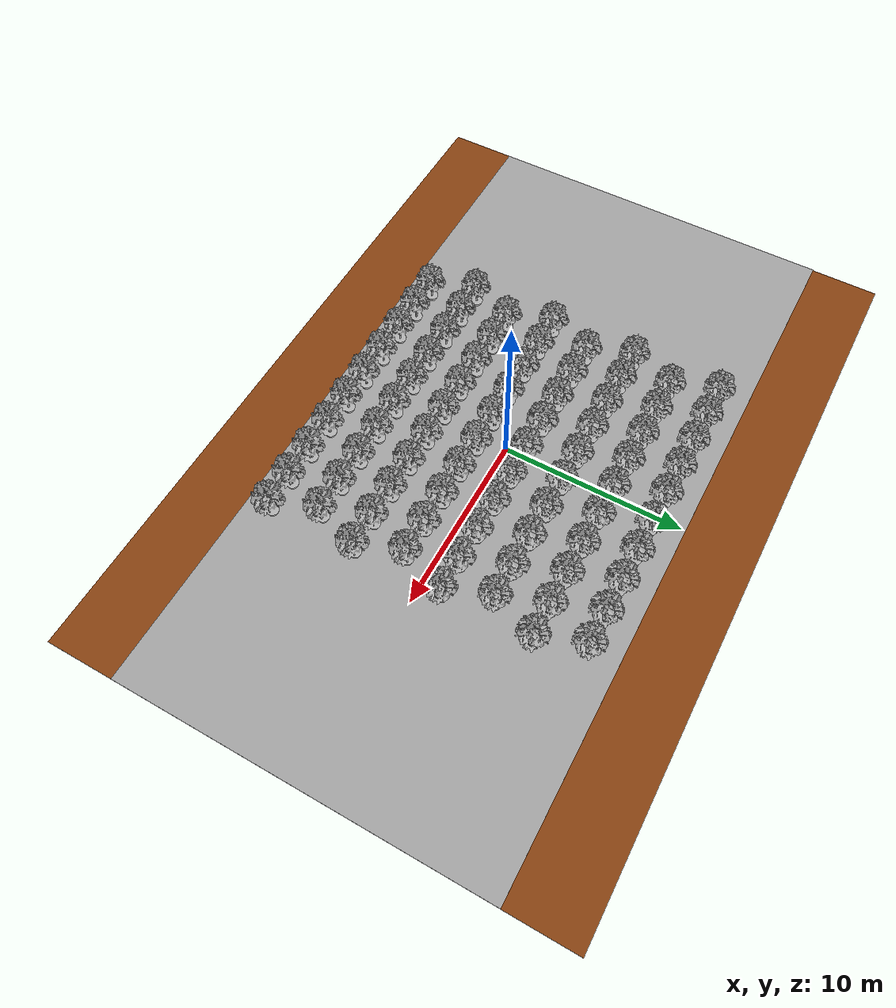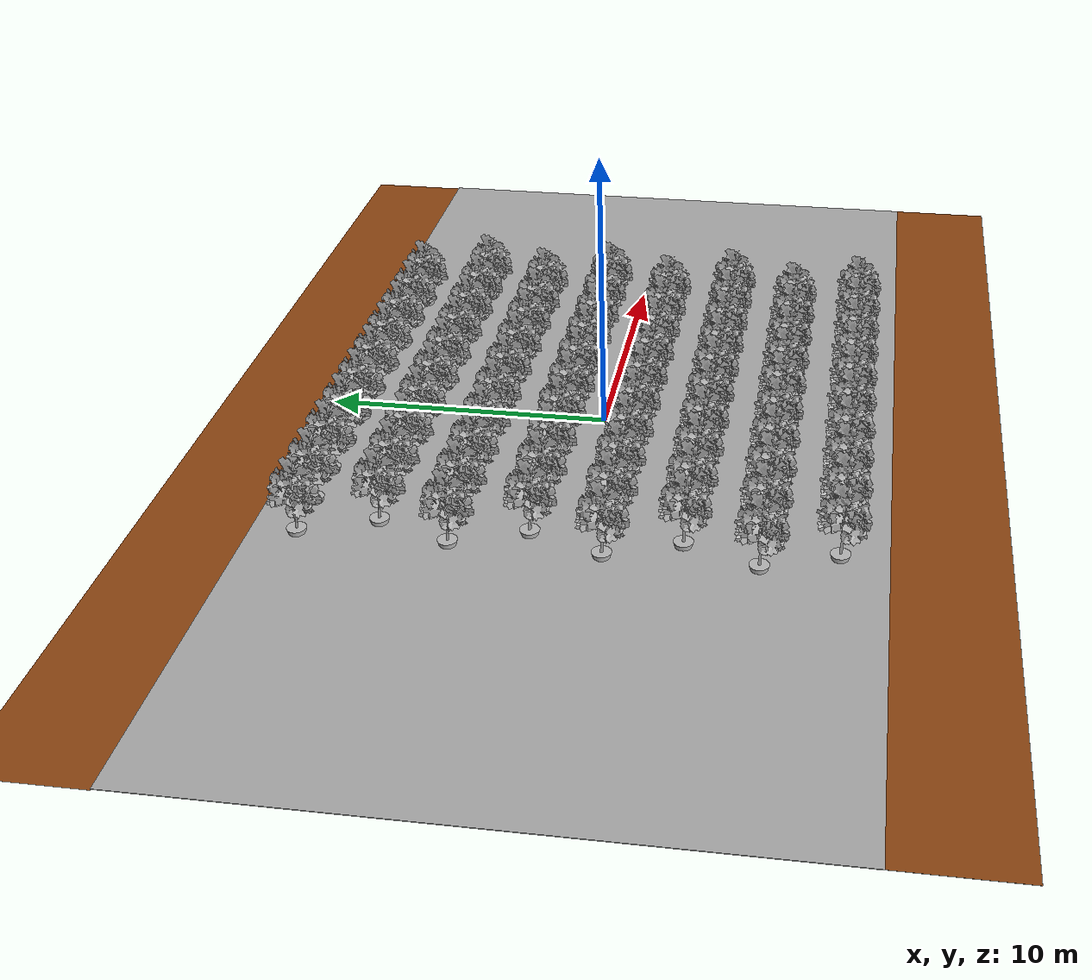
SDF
<?xml version="1.0" ?>
<sdf version="1.8">
  <world name="default">

  <!-- plugins needed to allow gazebo to function properly -->
  <plugin
    filename="gz-sim-physics-system"
    name="gz::sim::systems::Physics">
  </plugin>
  <plugin
    filename="gz-sim-user-commands-system"
    name="gz::sim::systems::UserCommands">
  </plugin>
  <plugin
    filename="gz-sim-scene-broadcaster-system"
    name="gz::sim::systems::SceneBroadcaster">
  </plugin>
  <plugin
    filename="gz-sim-sensors-system"
    name="gz::sim::systems::Sensors">
    <render_engine>ogre2</render_engine>
  </plugin>
  <plugin
    filename="gz-sim-imu-system"
    name="gz::sim::systems::Imu">
  </plugin>
  <plugin
    filename="ignition-gazebo-navsat-system"
    name="ignition::gazebo::systems::NavSat">
  </plugin>

  <spherical_coordinates>
    <surface_model>EARTH_WGS84</surface_model>
    <world_frame_orientation>ENU</world_frame_orientation>
    <latitude_deg>40.4406</latitude_deg>
    <longitude_deg>-79.9959</longitude_deg> <!-- pittsburgh-->
    <elevation>0</elevation>
    <heading_deg>0</heading_deg>
  </spherical_coordinates>

      <!-- ogre2 not working with just the MESA_GL_VERSION_OVERRIDE=3.3 trick -->

    <!-- A global light source -->
    <include>
      <uri>model://sun</uri>
    </include>

    <!-- A ground plane -->

    <!-- representing line 7 in spreadsheet, red maple shade tree -->

    <include>
      <uri>model://driveway_plane</uri>
      <name>"dw1"</name>
      <pose> 0 12.15 0 0 0 0</pose>
    </include>

    <include>
      <name>"dw2"</name>
      <uri>model://driveway_plane</uri>
      <pose> 0 -12.15 0 0 0 0</pose>
    </include>

    <include>
      <uri>model://nursery_ground</uri>
    </include>

        <include>
            <name>"tree_0,0"</name>
            <static>true</static>
            <uri>model://maple_tree</uri>
            <pose> -7.239999999999999 -8.68 0 0 0 0</pose>
        </include>

        <include>
            <name>"tree_1,0"</name>
            <static>true</static>
            <uri>model://maple_tree</uri>
            <pose> -8.145 -6.2 0 0 0 0</pose>
        </include>

        <include>
            <name>"tree_2,0"</name>
            <static>true</static>
            <uri>model://maple_tree</uri>
            <pose> -7.239999999999999 -3.7199999999999998 0 0 0 0</pose>
        </include>

        <include>
            <name>"tree_3,0"</name>
            <static>true</static>
            <uri>model://maple_tree</uri>
            <pose> -8.145 -1.24 0 0 0 0</pose>
        </include>

        <include>
            <name>"tree_4,0"</name>
            <static>true</static>
            <uri>model://maple_tree</uri>
            <pose> -7.239999999999999 1.24 0 0 0 0</pose>
        </include>

        <include>
            <name>"tree_5,0"</name>
            <static>true</static>
            <uri>model://maple_tree</uri>
            <pose> -8.145 3.7199999999999998 0 0 0 0</pose>
        </include>

        <include>
            <name>"tree_6,0"</name>
            <static>true</static>
            <uri>model://maple_tree</uri>
            <pose> -7.239999999999999 6.2 0 0 0 0</pose>
        </include>

        <include>
            <name>"tree_7,0"</name>
            <static>true</static>
            <uri>model://maple_tree</uri>
            <pose> -8.145 8.68 0 0 0 0</pose>
        </include>

        <include>
            <name>"tree_0,1"</name>
            <static>true</static>
            <uri>model://maple_tree</uri>
            <pose> -5.43 -8.68 0 0 0 0</pose>
        </include>

        <include>
            <name>"tree_1,1"</name>
            <static>true</static>
            <uri>model://maple_tree</uri>
            <pose> -6.335 -6.2 0 0 0 0</pose>
        </include>

        <include>
            <name>"tree_2,1"</name>
            <static>true</static>
            <uri>model://maple_tree</uri>
            <pose> -5.43 -3.7199999999999998 0 0 0 0</pose>
        </include>

        <include>
            <name>"tree_3,1"</name>
            <static>true</static>
            <uri>model://maple_tree</uri>
            <pose> -6.335 -1.24 0 0 0 0</pose>
        </include>

        <include>
            <name>"tree_4,1"</name>
            <static>true</static>
            <uri>model://maple_tree</uri>
            <pose> -5.43 1.24 0 0 0 0</pose>
        </include>

        <include>
            <name>"tree_5,1"</name>
            <static>true</static>
            <uri>model://maple_tree</uri>
            <pose> -6.335 3.7199999999999998 0 0 0 0</pose>
        </include>

        <include>
            <name>"tree_6,1"</name>
            <static>true</static>
            <uri>model://maple_tree</uri>
            <pose> -5.43 6.2 0 0 0 0</pose>
        </include>

        <include>
            <name>"tree_7,1"</name>
            <static>true</static>
            <uri>model://maple_tree</uri>
            <pose> -6.335 8.68 0 0 0 0</pose>
        </include>

        <include>
            <name>"tree_0,2"</name>
            <static>true</static>
            <uri>model://maple_tree</uri>
            <pose> -3.62 -8.68 0 0 0 0</pose>
        </include>

        <include>
            <name>"tree_1,2"</name>
            <static>true</static>
            <uri>model://maple_tree</uri>
            <pose> -4.525 -6.2 0 0 0 0</pose>
        </include>

        <include>
            <name>"tree_2,2"</name>
            <static>true</static>
            <uri>model://maple_tree</uri>
            <pose> -3.62 -3.7199999999999998 0 0 0 0</pose>
        </include>

        <include>
            <name>"tree_3,2"</name>
            <static>true</static>
            <uri>model://maple_tree</uri>
            <pose> -4.525 -1.24 0 0 0 0</pose>
        </include>

        <include>
            <name>"tree_4,2"</name>
            <static>true</static>
            <uri>model://maple_tree</uri>
            <pose> -3.62 1.24 0 0 0 0</pose>
        </include>

        <include>
            <name>"tree_5,2"</name>
            <static>true</static>
            <uri>model://maple_tree</uri>
            <pose> -4.525 3.7199999999999998 0 0 0 0</pose>
        </include>

        <include>
            <name>"tree_6,2"</name>
            <static>true</static>
            <uri>model://maple_tree</uri>
            <pose> -3.62 6.2 0 0 0 0</pose>
        </include>

        <include>
            <name>"tree_7,2"</name>
            <static>true</static>
            <uri>model://maple_tree</uri>
            <pose> -4.525 8.68 0 0 0 0</pose>
        </include>

        <include>
            <name>"tree_0,3"</name>
            <static>true</static>
            <uri>model://maple_tree</uri>
            <pose> -1.8099999999999998 -8.68 0 0 0 0</pose>
        </include>

        <include>
            <name>"tree_1,3"</name>
            <static>true</static>
            <uri>model://maple_tree</uri>
            <pose> -2.715 -6.2 0 0 0 0</pose>
        </include>

        <include>
            <name>"tree_2,3"</name>
            <static>true</static>
            <uri>model://maple_tree</uri>
            <pose> -1.8099999999999998 -3.7199999999999998 0 0 0 0</pose>
        </include>

        <include>
            <name>"tree_3,3"</name>
            <static>true</static>
            <uri>model://maple_tree</uri>
            <pose> -2.715 -1.24 0 0 0 0</pose>
        </include>

        <include>
            <name>"tree_4,3"</name>
            <static>true</static>
            <uri>model://maple_tree</uri>
            <pose> -1.8099999999999998 1.24 0 0 0 0</pose>
        </include>

        <include>
            <name>"tree_5,3"</name>
            <static>true</static>
            <uri>model://maple_tree</uri>
            <pose> -2.715 3.7199999999999998 0 0 0 0</pose>
        </include>

        <include>
            <name>"tree_6,3"</name>
            <static>true</static>
            <uri>model://maple_tree</uri>
            <pose> -1.8099999999999998 6.2 0 0 0 0</pose>
        </include>

        <include>
            <name>"tree_7,3"</name>
            <static>true</static>
            <uri>model://maple_tree</uri>
            <pose> -2.715 8.68 0 0 0 0</pose>
        </include>

        <include>
            <name>"tree_0,4"</name>
            <static>true</static>
            <uri>model://maple_tree</uri>
            <pose> 0.0 -8.68 0 0 0 0</pose>
        </include>

        <include>
            <name>"tree_1,4"</name>
            <static>true</static>
            <uri>model://maple_tree</uri>
            <pose> -0.905 -6.2 0 0 0 0</pose>
        </include>

        <include>
            <name>"tree_2,4"</name>
            <static>true</static>
            <uri>model://maple_tree</uri>
            <pose> 0.0 -3.7199999999999998 0 0 0 0</pose>
        </include>

        <include>
            <name>"tree_3,4"</name>
            <static>true</static>
            <uri>model://maple_tree</uri>
            <pose> -0.905 -1.24 0 0 0 0</pose>
        </include>

        <include>
            <name>"tree_4,4"</name>
            <static>true</static>
            <uri>model://maple_tree</uri>
            <pose> 0.0 1.24 0 0 0 0</pose>
        </include>

        <include>
            <name>"tree_5,4"</name>
            <static>true</static>
            <uri>model://maple_tree</uri>
            <pose> -0.905 3.7199999999999998 0 0 0 0</pose>
        </include>

        <include>
            <name>"tree_6,4"</name>
            <static>true</static>
            <uri>model://maple_tree</uri>
            <pose> 0.0 6.2 0 0 0 0</pose>
        </include>

        <include>
            <name>"tree_7,4"</name>
            <static>true</static>
            <uri>model://maple_tree</uri>
            <pose> -0.905 8.68 0 0 0 0</pose>
        </include>

        <include>
            <name>"tree_0,5"</name>
            <static>true</static>
            <uri>model://maple_tree</uri>
            <pose> 1.81 -8.68 0 0 0 0</pose>
        </include>

        <include>
            <name>"tree_1,5"</name>
            <static>true</static>
            <uri>model://maple_tree</uri>
            <pose> 0.905 -6.2 0 0 0 0</pose>
        </include>

        <include>
            <name>"tree_2,5"</name>
            <static>true</static>
            <uri>model://maple_tree</uri>
            <pose> 1.81 -3.7199999999999998 0 0 0 0</pose>
        </include>

        <include>
            <name>"tree_3,5"</name>
            <static>true</static>
            <uri>model://maple_tree</uri>
            <pose> 0.905 -1.24 0 0 0 0</pose>
        </include>

        <include>
            <name>"tree_4,5"</name>
            <static>true</static>
            <uri>model://maple_tree</uri>
            <pose> 1.81 1.24 0 0 0 0</pose>
        </include>

        <include>
            <name>"tree_5,5"</name>
            <static>true</static>
            <uri>model://maple_tree</uri>
            <pose> 0.905 3.7199999999999998 0 0 0 0</pose>
        </include>

        <include>
            <name>"tree_6,5"</name>
            <static>true</static>
            <uri>model://maple_tree</uri>
            <pose> 1.81 6.2 0 0 0 0</pose>
        </include>

        <include>
            <name>"tree_7,5"</name>
            <static>true</static>
            <uri>model://maple_tree</uri>
            <pose> 0.905 8.68 0 0 0 0</pose>
        </include>

        <include>
            <name>"tree_0,6"</name>
            <static>true</static>
            <uri>model://maple_tree</uri>
            <pose> 3.62 -8.68 0 0 0 0</pose>
        </include>

        <include>
            <name>"tree_1,6"</name>
            <static>true</static>
            <uri>model://maple_tree</uri>
            <pose> 2.715 -6.2 0 0 0 0</pose>
        </include>

        <include>
            <name>"tree_2,6"</name>
            <static>true</static>
            <uri>model://maple_tree</uri>
            <pose> 3.62 -3.7199999999999998 0 0 0 0</pose>
        </include>

        <include>
            <name>"tree_3,6"</name>
            <static>true</static>
            <uri>model://maple_tree</uri>
            <pose> 2.715 -1.24 0 0 0 0</pose>
        </include>

        <include>
            <name>"tree_4,6"</name>
            <static>true</static>
            <uri>model://maple_tree</uri>
            <pose> 3.62 1.24 0 0 0 0</pose>
        </include>

        <include>
            <name>"tree_5,6"</name>
            <static>true</static>
            <uri>model://maple_tree</uri>
            <pose> 2.715 3.7199999999999998 0 0 0 0</pose>
        </include>

        <include>
            <name>"tree_6,6"</name>
            <static>true</static>
            <uri>model://maple_tree</uri>
            <pose> 3.62 6.2 0 0 0 0</pose>
        </include>

        <include>
            <name>"tree_7,6"</name>
            <static>true</static>
            <uri>model://maple_tree</uri>
            <pose> 2.715 8.68 0 0 0 0</pose>
        </include>

        <include>
            <name>"tree_0,7"</name>
            <static>true</static>
            <uri>model://maple_tree</uri>
            <pose> 5.430000000000001 -8.68 0 0 0 0</pose>
        </include>

        <include>
            <name>"tree_1,7"</name>
            <static>true</static>
            <uri>model://maple_tree</uri>
            <pose> 4.525 -6.2 0 0 0 0</pose>
        </include>

        <include>
            <name>"tree_2,7"</name>
            <static>true</static>
            <uri>model://maple_tree</uri>
            <pose> 5.430000000000001 -3.7199999999999998 0 0 0 0</pose>
        </include>

        <include>
            <name>"tree_3,7"</name>
            <static>true</static>
            <uri>model://maple_tree</uri>
            <pose> 4.525 -1.24 0 0 0 0</pose>
        </include>

        <include>
            <name>"tree_4,7"</name>
            <static>true</static>
            <uri>model://maple_tree</uri>
            <pose> 5.430000000000001 1.24 0 0 0 0</pose>
        </include>

        <include>
            <name>"tree_5,7"</name>
            <static>true</static>
            <uri>model://maple_tree</uri>
            <pose> 4.525 3.7199999999999998 0 0 0 0</pose>
        </include>

        <include>
            <name>"tree_6,7"</name>
            <static>true</static>
            <uri>model://maple_tree</uri>
            <pose> 5.430000000000001 6.2 0 0 0 0</pose>
        </include>

        <include>
            <name>"tree_7,7"</name>
            <static>true</static>
            <uri>model://maple_tree</uri>
            <pose> 4.525 8.68 0 0 0 0</pose>
        </include>

        <include>
            <name>"tree_0,8"</name>
            <static>true</static>
            <uri>model://maple_tree</uri>
            <pose> 7.24 -8.68 0 0 0 0</pose>
        </include>

        <include>
            <name>"tree_1,8"</name>
            <static>true</static>
            <uri>model://maple_tree</uri>
            <pose> 6.335 -6.2 0 0 0 0</pose>
        </include>

        <include>
            <name>"tree_2,8"</name>
            <static>true</static>
            <uri>model://maple_tree</uri>
            <pose> 7.24 -3.7199999999999998 0 0 0 0</pose>
        </include>

        <include>
            <name>"tree_3,8"</name>
            <static>true</static>
            <uri>model://maple_tree</uri>
            <pose> 6.335 -1.24 0 0 0 0</pose>
        </include>

        <include>
            <name>"tree_4,8"</name>
            <static>true</static>
            <uri>model://maple_tree</uri>
            <pose> 7.24 1.24 0 0 0 0</pose>
        </include>

        <include>
            <name>"tree_5,8"</name>
            <static>true</static>
            <uri>model://maple_tree</uri>
            <pose> 6.335 3.7199999999999998 0 0 0 0</pose>
        </include>

        <include>
            <name>"tree_6,8"</name>
            <static>true</static>
            <uri>model://maple_tree</uri>
            <pose> 7.24 6.2 0 0 0 0</pose>
        </include>

        <include>
            <name>"tree_7,8"</name>
            <static>true</static>
            <uri>model://maple_tree</uri>
            <pose> 6.335 8.68 0 0 0 0</pose>
        </include>

        <include>
            <name>"tree_0,9"</name>
            <static>true</static>
            <uri>model://maple_tree</uri>
            <pose> 9.049999999999999 -8.68 0 0 0 0</pose>
        </include>

        <include>
            <name>"tree_1,9"</name>
            <static>true</static>
            <uri>model://maple_tree</uri>
            <pose> 8.145 -6.2 0 0 0 0</pose>
        </include>

        <include>
            <name>"tree_2,9"</name>
            <static>true</static>
            <uri>model://maple_tree</uri>
            <pose> 9.049999999999999 -3.7199999999999998 0 0 0 0</pose>
        </include>

        <include>
            <name>"tree_3,9"</name>
            <static>true</static>
            <uri>model://maple_tree</uri>
            <pose> 8.145 -1.24 0 0 0 0</pose>
        </include>

        <include>
            <name>"tree_4,9"</name>
            <static>true</static>
            <uri>model://maple_tree</uri>
            <pose> 9.049999999999999 1.24 0 0 0 0</pose>
        </include>

        <include>
            <name>"tree_5,9"</name>
            <static>true</static>
            <uri>model://maple_tree</uri>
            <pose> 8.145 3.7199999999999998 0 0 0 0</pose>
        </include>

        <include>
            <name>"tree_6,9"</name>
            <static>true</static>
            <uri>model://maple_tree</uri>
            <pose> 9.049999999999999 6.2 0 0 0 0</pose>
        </include>

        <include>
            <name>"tree_7,9"</name>
            <static>true</static>
            <uri>model://maple_tree</uri>
            <pose> 8.145 8.68 0 0 0 0</pose>
        </include>

  </world>
</sdf>

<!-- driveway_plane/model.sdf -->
<sdf version="1.5">
  <model name="driveway_plane">
    <static>true</static>
    <link name="link">
      <collision name="collision">
        <geometry>
          <plane>
            <normal>0 0 1</normal>
            <size>40 2.2 </size>
          </plane>
        </geometry>
        <surface>
          <friction>
            <ode>
              <mu>1</mu>
              <mu2>1</mu2>
            </ode>
          </friction>
        </surface>
      </collision>
      <visual name="visual">
        <cast_shadows>false</cast_shadows>
        <geometry>
          <plane>
            <normal>0 0 1</normal>
            <size>40 3.8</size>
          </plane>
        </geometry>
        <material>
            <ambient>0.55 0.27 0.07 1</ambient> <!-- brown-->
            <diffuse>0.55 0.27 0.07 1</diffuse>
            <specular>0 0 0 0</specular>
            <emissive>0 0 0 1</emissive>
        </material>
      </visual>
    </link>
  </model>
</sdf>

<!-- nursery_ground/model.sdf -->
<sdf version="1.5">
  <model name="nursery_ground">
    <static>true</static>
    <link name="link">
      <collision name="collision">
        <geometry>
          <plane>
            <normal>0 0 1</normal>
            <size>40 9.1 </size>
          </plane>
        </geometry>
        <surface>
          <friction>
            <ode>
              <mu>1</mu>
              <mu2>1</mu2>
            </ode>
          </friction>
        </surface>
      </collision>
      <visual name="visual">
        <cast_shadows>false</cast_shadows>
        <geometry>
          <plane>
            <normal>0 0 1</normal>
            <size>40 20.5</size>
          </plane>
        </geometry>
        <material>
            <diffuse>0.66 0.66 0.66 1</diffuse>
        </material>
      </visual>
    </link>
  </model>
</sdf>

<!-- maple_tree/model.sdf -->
<sdf version= "1.5">
	<model name= "maple_tree">
		<static>true</static>
		<link name= "tree" >
			<visual name= "visual">
				<geometry>
					<mesh>
						<uri>model://maple_tree/meshes/potted_maple_tree17.dae</uri>
					</mesh>
				</geometry>
			</visual>
		</link>
	</model>
</sdf>
